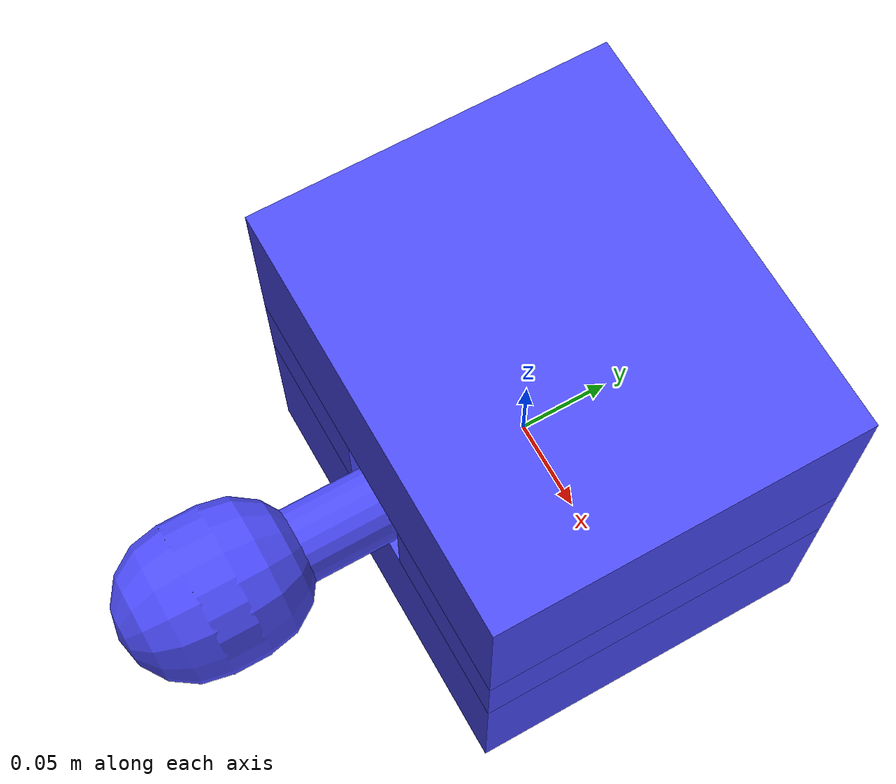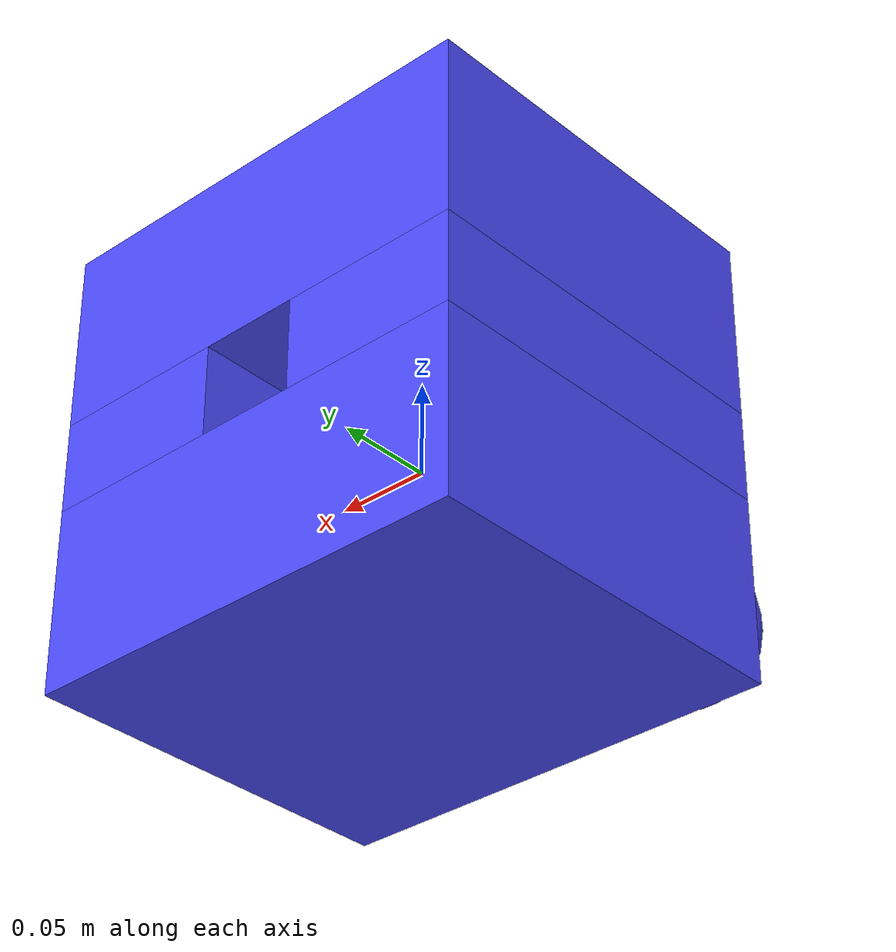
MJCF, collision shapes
<mujoco model="buttonbox">
    <compiler angle="radian" inertiafromgeom="auto" inertiagrouprange="4 5"/>
    <asset>
      <texture name="T_btn" type="cube" file="../textures/metal1.png"/>

      <material name="btn_col" rgba="0.3 0.3 1.0 0.5" shininess="0" specular="0"/>
      <material name="btn_red" rgba=".6 0 0 1" shininess="1" reflectance=".7" specular=".5"/>
      <material name="btn_yellow" rgba=".7 .5 0 1" shininess="1" reflectance=".7" specular=".5"/>
      <material name="btn_black" rgba=".15 .15 .15 1" shininess="1" reflectance=".7" specular=".5"/>
      <material name="btn_metal" rgba=".8 .8 .8 1" texture="T_btn" shininess="1" reflectance="1" specular="1"/>

      <mesh file="../objects/meshes/buttonbox/stopbot.stl" name="stopbot"/>
      <mesh file="../objects/meshes/buttonbox/stopbutton.stl" name="stopbutton"/>
      <mesh file="../objects/meshes/buttonbox/stopbuttonrim.stl" name="stopbuttonrim"/>
      <mesh file="../objects/meshes/buttonbox/stopbuttonrod.stl" name="stopbuttonrod"/>
      <mesh file="../objects/meshes/buttonbox/stoptop.stl" name="stoptop"/>
    </asset>

    <default>
      <default class="buttonbox_base">
        <joint armature="0.001" damping="2" limited="true"/>
        <geom conaffinity="0" contype="0" group="1" type="mesh"/>
        <position ctrllimited="true" ctrlrange="0 1.57"/>
        <default class="buttonbox_viz">
          <geom condim="4" type="mesh"/>
        </default>
        <default class="buttonbox_col">
          <geom conaffinity="1" condim="3" contype="1" group="4" material="btn_col" solimp="0.99 0.99 0.01" solref="0.01 1"/>
        </default>
      </default>
    </default>

    <!--include file="../scene/basic_scene.xml"/-->
    <worldbody>
      <body name="box" pos="0 0 0">
        <body childclass="buttonbox_base" name="buttonbox">
          <geom material="btn_black" mesh="stopbot" pos="0 -0.06 0"/>
          <geom material="btn_metal" euler="1.57 0 0" mesh="stopbuttonrim" pos="0 -0.089 0"/>
          <geom material="btn_yellow" mesh="stoptop" pos="0 -0.06 0"/>

          <geom class="buttonbox_col" pos="0 0.012 0.072" size="0.12 0.102 0.048" type="box"/>
          <geom class="buttonbox_col" pos="0 0.012 -0.072" size="0.12 0.102 0.048" type="box"/>
          <geom class="buttonbox_col" pos="-0.073 0.012 0" size="0.047 0.102 0.024" type="box"/>
          <geom class="buttonbox_col" pos="0.073 0.012 0" size="0.047 0.102 0.024" type="box"/>

          <body childclass="buttonbox_base" name="button">
              <inertial pos="0 -0.1935 0" mass=".01" diaginertia="0.001 0.001 0.001"/>
              <joint name="btnbox_joint" pos="0 0 0" axis="0 -1 0" type="slide" springref=".5" limited="true" stiffness="0.5" range="-0.06 0" damping="1"/>
              <geom material="btn_red" euler="1.57 0 0" mesh="stopbutton" pos="0 -0.158 0" name="btnGeom"/>
              <geom material="btn_black" euler="1.57 0 0" mesh="stopbuttonrod" pos="0 -0.126 0"/>

              <geom class="buttonbox_col" euler="1.57 0 0" pos="0 -0.128 0" size="0.021 0.039" type="capsule"/>
              <geom class="buttonbox_col" euler="1.57 0 0" pos="0 -0.166 0" size="0.026 0.008" type="capsule"/>
              <geom class="buttonbox_col" euler="1.57 0 0" pos="0 -0.183 0" size="0.043 0.011" type="capsule"/>
              <body name="buttonStart" pos="0 -0.1935 0" ></body>
          </body>
        </body>
        <body name="hole" pos="0 -0.1 0"></body>
      </body>
  </worldbody>
</mujoco>
